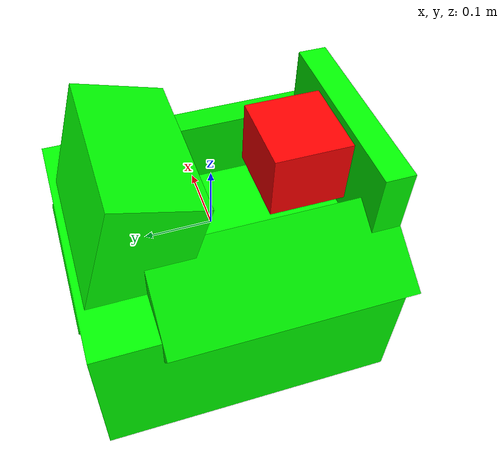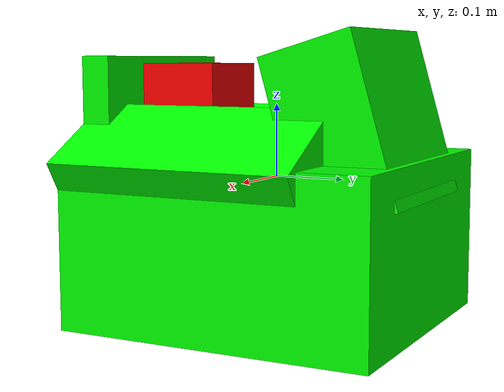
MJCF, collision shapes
<mujoco model="coffee_machine_17">
  <compiler autolimits="true" boundmass="0.01" angle="radian"/>
  <default>
    <default class="/">
      <default class="__VISUAL_MJT__">
        <geom contype="0" conaffinity="0" group="0"/>
      </default>
      <default class="__STRUCTURAL_MJT__">
        <geom contype="8" conaffinity="15" group="4" friction="0.90000000000000002 0.90000000000000002 0.001" solref="0.025000000000000001 1" solimp="0.998 0.998 0.001"/>
      </default>
      <default class="__DYNAMIC_MJT__">
        <geom contype="1" conaffinity="15" group="4" friction="0.90000000000000002 0.90000000000000002 0.001" solref="0.025000000000000001 1" solimp="0.998 0.998 0.001"/>
      </default>
    </default>
  </default>
  <asset>
    <material name="material_coffee_machine_backup_mat" class="/" specular="0.5" shininess="0.5" rgba="0.5 0.5 0.5 1"/>
    <material name="material_Coffee_Machine_Readout_Mat_Off" class="/" specular="0.5" shininess="0.5" rgba="0 0 0 1"/>
    <texture name="Coffee_Machine_Decal_Mat" type="2d" file="Coffee_Machine_Decal_AlbedoTransparency.png"/>
    <material name="material_Coffee_Machine_Decal_Mat" class="/" texture="Coffee_Machine_Decal_Mat" specular="0.5" shininess="0.5" rgba="1 1 1 1"/>
    <texture name="Coffee_Machine_Metal_Mat" type="2d" file="MetalBumpy_AlbedoTransparency.png"/>
    <material name="material_Coffee_Machine_Metal_Mat" class="/" texture="Coffee_Machine_Metal_Mat" specular="0.5" shininess="0.5" rgba="0.66176469999999998 0.66176469999999998 0.66176469999999998 1"/>
    <texture name="Coffee_Machine_Secondary2_Color_Mat" type="2d" file="BrushedIron_AlbedoTransparency.png"/>
    <material name="material_Coffee_Machine_Secondary2_Color_Mat" class="/" texture="Coffee_Machine_Secondary2_Color_Mat" specular="0.5" shininess="0.5" rgba="0.80882350000000003 0.80882350000000003 0.80882350000000003 1"/>
    <texture name="Coffee_Machine_Primary2_Color_Mat" type="2d" file="BumpyPlastic_Albedo.png"/>
    <material name="material_Coffee_Machine_Primary2_Color_Mat" class="/" texture="Coffee_Machine_Primary2_Color_Mat" specular="0.5" shininess="0.5" rgba="0.6323529 0.46849269999999998 0.29292820000000003 1"/>
    <mesh name="coffee_machine_17_coffee_machine_17_0" class="/" file="coffee_machine_17_coffee_machine_17/coffee_machine_17_coffee_machine_17_0.obj" scale="1 1 1"/>
    <mesh name="coffee_machine_17_coffee_machine_17_1" class="/" file="coffee_machine_17_coffee_machine_17/coffee_machine_17_coffee_machine_17_1.obj" scale="1 1 1"/>
    <mesh name="coffee_machine_17_coffee_machine_17_2" class="/" file="coffee_machine_17_coffee_machine_17/coffee_machine_17_coffee_machine_17_2.obj" scale="1 1 1"/>
    <mesh name="coffee_machine_17_coffee_machine_17_3" class="/" file="coffee_machine_17_coffee_machine_17/coffee_machine_17_coffee_machine_17_3.obj" scale="1 1 1"/>
    <mesh name="coffee_machine_17_coffee_machine_17_4" class="/" file="coffee_machine_17_coffee_machine_17/coffee_machine_17_coffee_machine_17_4.obj" scale="1 1 1"/>
    <mesh name="coffee_machine_17_coffee_machine_17_5" class="/" file="coffee_machine_17_coffee_machine_17/coffee_machine_17_coffee_machine_17_5.obj" scale="1 1 1"/>
  </asset>
  <worldbody>
    <body name="coffee_machine_17">
      <joint name="coffee_machine_17_free" class="/" type="free" pos="0 0 0" axis="0 0 1" stiffness="0" range="0 0" armature="0" damping="0.10000000000000001" frictionloss="0"/>
      <body name="coffee_machine_17_coffee_machine_17" pos="-0.00033 -0.22214 -0.037429999999999998" quat="1 0 0 0">
        <geom name="coffee_machine_17_coffee_machine_17_0" class="__VISUAL_MJT__" type="mesh" material="material_coffee_machine_backup_mat" shellinertia="true" mesh="coffee_machine_17_coffee_machine_17_0"/>
        <geom name="coffee_machine_17_coffee_machine_17_1" class="__VISUAL_MJT__" type="mesh" material="material_Coffee_Machine_Readout_Mat_Off" shellinertia="false" mesh="coffee_machine_17_coffee_machine_17_1"/>
        <geom name="coffee_machine_17_coffee_machine_17_2" class="__VISUAL_MJT__" type="mesh" material="material_Coffee_Machine_Decal_Mat" shellinertia="true" mesh="coffee_machine_17_coffee_machine_17_2"/>
        <geom name="coffee_machine_17_coffee_machine_17_3" class="__VISUAL_MJT__" type="mesh" material="material_Coffee_Machine_Metal_Mat" shellinertia="false" mesh="coffee_machine_17_coffee_machine_17_3"/>
        <geom name="coffee_machine_17_coffee_machine_17_4" class="__VISUAL_MJT__" type="mesh" material="material_Coffee_Machine_Secondary2_Color_Mat" shellinertia="false" mesh="coffee_machine_17_coffee_machine_17_4"/>
        <geom name="coffee_machine_17_coffee_machine_17_5" class="__VISUAL_MJT__" type="mesh" material="material_Coffee_Machine_Primary2_Color_Mat" shellinertia="false" mesh="coffee_machine_17_coffee_machine_17_5"/>
        <site name="coffee_machine_17_Receptacle_0" class="/" type="box" rgba="1 0 0 1" size="0.060163989663124084 0.055446892976760864 0.048792209476232529" pos="-0 0.099346891045570374 0.14399999380111694" quat="1 0 0 0"/>
        <geom name="coffee_machine_17_PrimitiveCollider_0" class="__DYNAMIC_MJT__" type="box" size="0.19906541705131531 0.21990096569061279 0.1149502694606781" rgba="0 1 0 1" pos="-0 0.21990096569061279 -0.046909421682357788" quat="1 0 0 0"/>
        <geom name="coffee_machine_17_PrimitiveCollider_1" class="__DYNAMIC_MJT__" type="box" size="0.071670621633529663 0.17311275005340576 0.035180684179067612" rgba="0 1 0 1" pos="-0.14180627465248108 0.17311275005340576 0.06564466655254364" quat="0.96424621343612671 0 -0.26500821113586426 0"/>
        <geom name="coffee_machine_17_PrimitiveCollider_2" class="__DYNAMIC_MJT__" type="box" size="0.071670621633529663 0.17311275005340576 0.035180684179067612" rgba="0 1 0 1" pos="0.14109833538532257 0.17311275005340576 0.070257976651191711" quat="0.96513980627059937 0 0.26173499226570129 0"/>
        <geom name="coffee_machine_17_PrimitiveCollider_3" class="__DYNAMIC_MJT__" type="box" size="0.12093877047300339 0.065277099609375 0.1149502694606781" rgba="0 1 0 1" pos="-0 0.34958717226982117 0.10815297067165375" quat="0.99007827043533325 0.14051705598831177 0 0"/>
        <geom name="coffee_machine_17_PrimitiveCollider_4" class="__DYNAMIC_MJT__" type="box" size="0.14088796079158783 0.021029472351074219 0.16350336372852325" rgba="0 1 0 1" pos="8.3967286627739668e-05 0.021029472351074219 0.039043370634317398" quat="1 0 0 0"/>
      </body>
    </body>
  </worldbody>
</mujoco>
